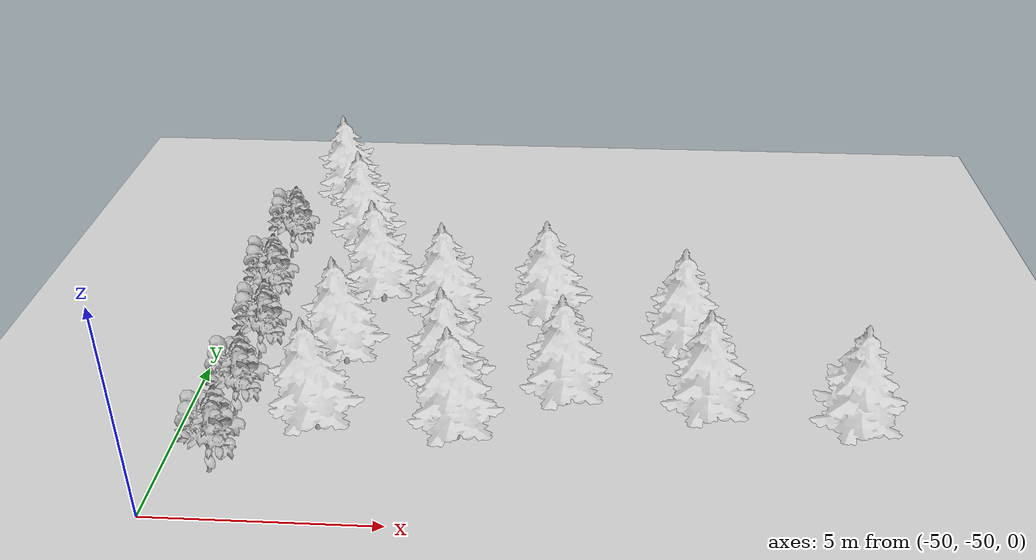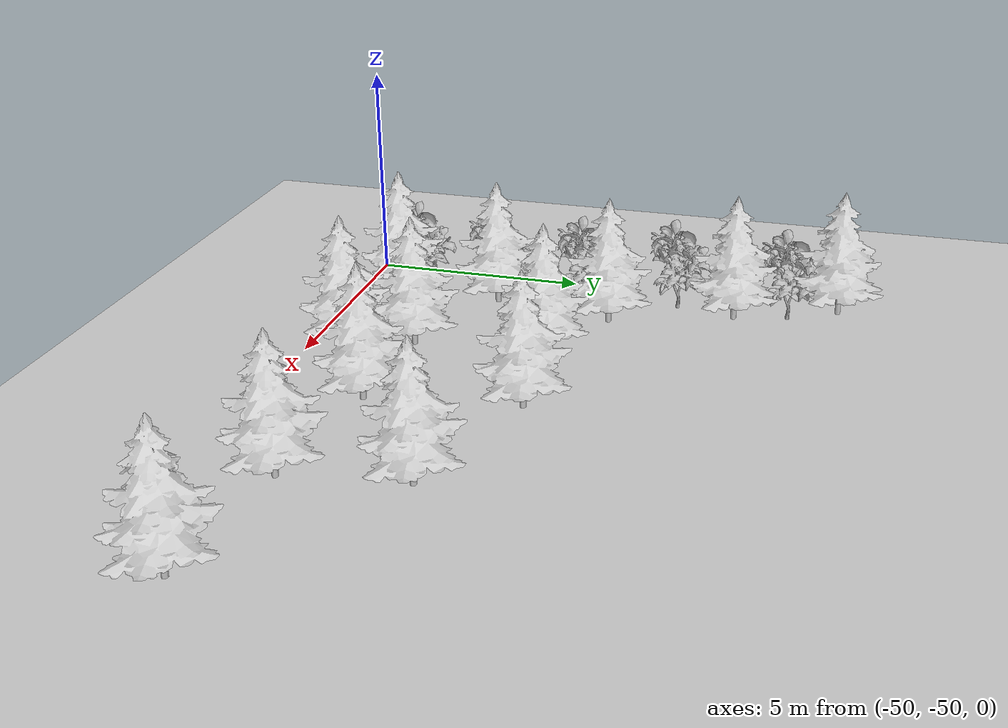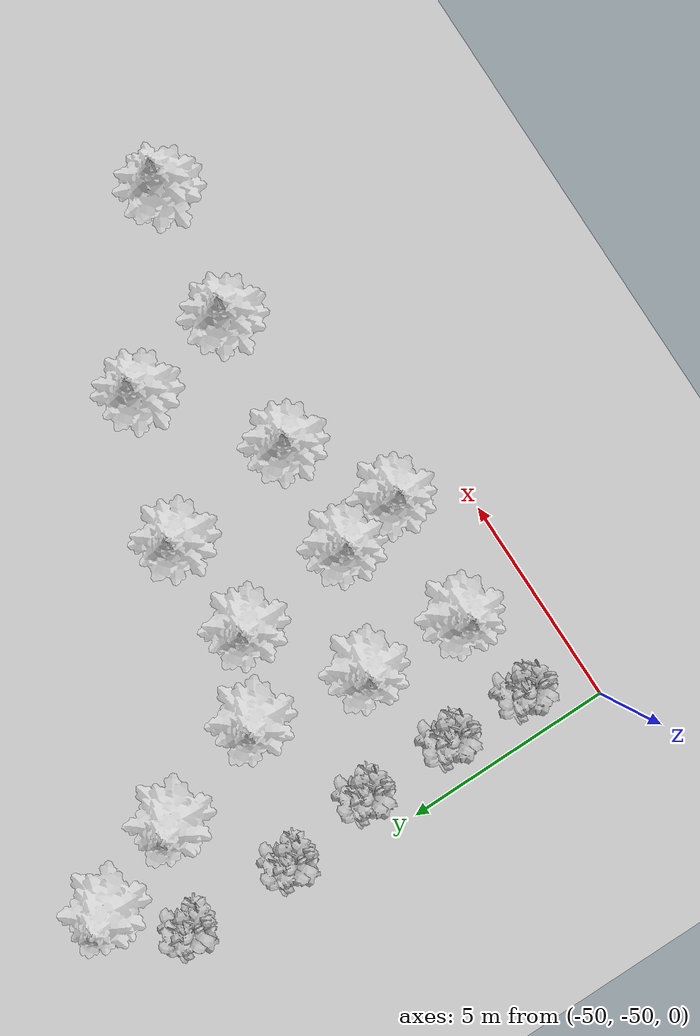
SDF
<sdf version="1.7">
 <world name="default">
  <light name="sun" type="directional">
   <pose>0 0 10 0 -0 0</pose>
   <diffuse>0.8 0.8 0.8 1</diffuse>
   <specular>0.2 0.2 0.2 1</specular>
   <attenuation>
    <range>1000</range>
    <constant>0.9</constant>
    <linear>0.01</linear>
    <quadratic>0.001</quadratic>
   </attenuation>
   <direction>-0.5 0.1 -0.9</direction>
   <spot><inner_angle>0</inner_angle><outer_angle>0</outer_angle><falloff>0</falloff></spot>
  </light>
  <model name="ground_plane">
   <static>1</static>
   <link name="link">
    <collision name="collision">
     <geometry><plane><normal>0 0 1</normal><size>100 100</size></plane></geometry>
     <surface>
      <contact><collide_bitmask>65535</collide_bitmask></contact>
      <friction><ode><mu>100</mu><mu2>50</mu2></ode></friction>
     </surface>
    </collision>
    <visual name="visual">
     <cast_shadows>0</cast_shadows>
     <geometry><plane><normal>0 0 1</normal><size>100 100</size></plane></geometry>
     <material>
      <script><uri>file://media/materials/scripts/gazebo.material</uri><name>Gazebo/Grey</name></script>
     </material>
    </visual>
   </link>
  </model>
  <gravity>0 0 -9.8</gravity>
  <magnetic_field>6e-06 2.3e-05 -4.2e-05</magnetic_field>
  <atmosphere type="adiabatic"/>
  <physics type="ode">
   <max_step_size>0.001</max_step_size>
   <real_time_factor>1</real_time_factor>
   <real_time_update_rate>1000</real_time_update_rate>
  </physics>
  <scene><ambient>0.4 0.4 0.4 1</ambient><background>0.7 0.7 0.7 1</background><shadows>1</shadows></scene>
  <spherical_coordinates>
   <surface_model>EARTH_WGS84</surface_model>
   <latitude_deg>0</latitude_deg>
   <longitude_deg>0</longitude_deg>
   <elevation>0</elevation>
   <heading_deg>0</heading_deg>
  </spherical_coordinates>
  <model name="pine_tree_1">
   <static>1</static>
   <link name="pine_tree_1">
    <pose>0 0 1 0 -0 0</pose>
    <collision name="pine_tree_1">
     <geometry><mesh><uri>model://pine_tree_1/pine_tree_1.dae</uri></mesh></geometry>
    </collision>
    <visual name="pine_tree_1">
     <cast_shadows>0</cast_shadows>
     <geometry><mesh><scale>0.9 0.9 0.9</scale><uri>model://pine_tree_1/pine_tree_1.dae</uri></mesh></geometry>
     <material><script><name>pine_tree_1</name><uri>model://pine_tree_1/pine_tree_1.dae</uri></script></material>
    </visual>
   </link>
   <pose>-47.6303 -38.541 0 0 -0 0</pose>
  </model>
  <model name="pine_tree_1_0">
   <static>1</static>
   <link name="pine_tree_1">
    <pose>0 0 1 0 -0 0</pose>
    <collision name="pine_tree_1">
     <geometry><mesh><uri>model://pine_tree_1/pine_tree_1.dae</uri></mesh></geometry>
    </collision>
    <visual name="pine_tree_1">
     <cast_shadows>0</cast_shadows>
     <geometry><mesh><scale>0.9 0.9 0.9</scale><uri>model://pine_tree_1/pine_tree_1.dae</uri></mesh></geometry>
     <material><script><name>pine_tree_1</name><uri>model://pine_tree_1/pine_tree_1.dae</uri></script></material>
    </visual>
   </link>
   <pose>-46.8308 -40.7186 0 0 -0 0</pose>
  </model>
  <model name="pine_tree_1_1">
   <static>1</static>
   <link name="pine_tree_1">
    <pose>0 0 1 0 -0 0</pose>
    <collision name="pine_tree_1">
     <geometry><mesh><uri>model://pine_tree_1/pine_tree_1.dae</uri></mesh></geometry>
    </collision>
    <visual name="pine_tree_1">
     <cast_shadows>0</cast_shadows>
     <geometry><mesh><scale>0.9 0.9 0.9</scale><uri>model://pine_tree_1/pine_tree_1.dae</uri></mesh></geometry>
     <material><script><name>pine_tree_1</name><uri>model://pine_tree_1/pine_tree_1.dae</uri></script></material>
    </visual>
   </link>
   <pose>-46.0277 -43.3141 0 0 -0 0</pose>
  </model>
  <model name="pine_tree_1_2">
   <static>1</static>
   <link name="pine_tree_1">
    <pose>0 0 1 0 -0 0</pose>
    <collision name="pine_tree_1">
     <geometry><mesh><uri>model://pine_tree_1/pine_tree_1.dae</uri></mesh></geometry>
    </collision>
    <visual name="pine_tree_1">
     <cast_shadows>0</cast_shadows>
     <geometry><mesh><scale>0.9 0.9 0.9</scale><uri>model://pine_tree_1/pine_tree_1.dae</uri></mesh></geometry>
     <material><script><name>pine_tree_1</name><uri>model://pine_tree_1/pine_tree_1.dae</uri></script></material>
    </visual>
   </link>
   <pose>-46.4459 -45.9111 0 0 -0 0</pose>
  </model>
  <model name="pine_tree_1_3">
   <static>1</static>
   <link name="pine_tree_1">
    <pose>0 0 1 0 -0 0</pose>
    <collision name="pine_tree_1">
     <geometry><mesh><uri>model://pine_tree_1/pine_tree_1.dae</uri></mesh></geometry>
    </collision>
    <visual name="pine_tree_1">
     <cast_shadows>0</cast_shadows>
     <geometry><mesh><scale>0.9 0.9 0.9</scale><uri>model://pine_tree_1/pine_tree_1.dae</uri></mesh></geometry>
     <material><script><name>pine_tree_1</name><uri>model://pine_tree_1/pine_tree_1.dae</uri></script></material>
    </visual>
   </link>
   <pose>-44.2925 -44.288 0 0 -0 0</pose>
  </model>
  <model name="pine_tree_1_4">
   <static>1</static>
   <link name="pine_tree_1">
    <pose>0 0 1 0 -0 0</pose>
    <collision name="pine_tree_1">
     <geometry><mesh><uri>model://pine_tree_1/pine_tree_1.dae</uri></mesh></geometry>
    </collision>
    <visual name="pine_tree_1">
     <cast_shadows>0</cast_shadows>
     <geometry><mesh><scale>0.9 0.9 0.9</scale><uri>model://pine_tree_1/pine_tree_1.dae</uri></mesh></geometry>
     <material><script><name>pine_tree_1</name><uri>model://pine_tree_1/pine_tree_1.dae</uri></script></material>
    </visual>
   </link>
   <pose>-43.9873 -46.983 0 0 -0 0</pose>
  </model>
  <model name="pine_tree_1_5">
   <static>1</static>
   <link name="pine_tree_1">
    <pose>0 0 1 0 -0 0</pose>
    <collision name="pine_tree_1">
     <geometry><mesh><uri>model://pine_tree_1/pine_tree_1.dae</uri></mesh></geometry>
    </collision>
    <visual name="pine_tree_1">
     <cast_shadows>0</cast_shadows>
     <geometry><mesh><scale>0.9 0.9 0.9</scale><uri>model://pine_tree_1/pine_tree_1.dae</uri></mesh></geometry>
     <material><script><name>pine_tree_1</name><uri>model://pine_tree_1/pine_tree_1.dae</uri></script></material>
    </visual>
   </link>
   <pose>-46.5955 -48.2274 0 0 -0 0</pose>
  </model>
  <model name="birch_tree">
   <static>1</static>
   <link name="birch_tree">
    <collision name="birch_tree">
     <geometry><mesh><uri>model://birch_tree/birch_tree.dae</uri></mesh></geometry>
    </collision>
    <visual name="birch_tree">
     <cast_shadows>0</cast_shadows>
     <geometry><mesh><scale>0.4 0.4 0.4</scale><uri>model://birch_tree/birch_tree.dae</uri></mesh></geometry>
     <material><script><name>birch_tree</name><uri>model://birch_tree/birch_tree.dae</uri></script></material>
    </visual>
   </link>
   <pose>-49.2438 -42.3078 0 0 -0 0</pose>
  </model>
  <model name="birch_tree_0">
   <static>1</static>
   <link name="birch_tree">
    <collision name="birch_tree">
     <geometry><mesh><uri>model://birch_tree/birch_tree.dae</uri></mesh></geometry>
    </collision>
    <visual name="birch_tree">
     <cast_shadows>0</cast_shadows>
     <geometry><mesh><scale>0.4 0.4 0.4</scale><uri>model://birch_tree/birch_tree.dae</uri></mesh></geometry>
     <material><script><name>birch_tree</name><uri>model://birch_tree/birch_tree.dae</uri></script></material>
    </visual>
   </link>
   <pose>-48.9254 -44.4658 0 0 -0 0</pose>
  </model>
  <model name="birch_tree_1">
   <static>1</static>
   <link name="birch_tree">
    <collision name="birch_tree">
     <geometry><mesh><uri>model://birch_tree/birch_tree.dae</uri></mesh></geometry>
    </collision>
    <visual name="birch_tree">
     <cast_shadows>0</cast_shadows>
     <geometry><mesh><scale>0.4 0.4 0.4</scale><uri>model://birch_tree/birch_tree.dae</uri></mesh></geometry>
     <material><script><name>birch_tree</name><uri>model://birch_tree/birch_tree.dae</uri></script></material>
    </visual>
   </link>
   <pose>-48.9175 -46.6421 0 0 -0 0</pose>
  </model>
  <model name="birch_tree_2">
   <static>1</static>
   <link name="birch_tree">
    <collision name="birch_tree">
     <geometry><mesh><uri>model://birch_tree/birch_tree.dae</uri></mesh></geometry>
    </collision>
    <visual name="birch_tree">
     <cast_shadows>0</cast_shadows>
     <geometry><mesh><scale>0.4 0.4 0.4</scale><uri>model://birch_tree/birch_tree.dae</uri></mesh></geometry>
     <material><script><name>birch_tree</name><uri>model://birch_tree/birch_tree.dae</uri></script></material>
    </visual>
   </link>
   <pose>-48.9451 -48.5629 0 0 -0 0</pose>
  </model>
  <model name="birch_tree_3">
   <static>1</static>
   <link name="birch_tree">
    <collision name="birch_tree">
     <geometry><mesh><uri>model://birch_tree/birch_tree.dae</uri></mesh></geometry>
    </collision>
    <visual name="birch_tree">
     <cast_shadows>0</cast_shadows>
     <geometry><mesh><scale>0.4 0.4 0.4</scale><uri>model://birch_tree/birch_tree.dae</uri></mesh></geometry>
     <material><script><name>birch_tree</name><uri>model://birch_tree/birch_tree.dae</uri></script></material>
    </visual>
   </link>
   <pose>-49.2586 -39.713 0 0 -0 0</pose>
  </model>
  <model name="pine_tree_1_6">
   <static>1</static>
   <link name="pine_tree_1">
    <pose>0 0 1 0 -0 0</pose>
    <collision name="pine_tree_1">
     <geometry><mesh><uri>model://pine_tree_1/pine_tree_1.dae</uri></mesh></geometry>
    </collision>
    <visual name="pine_tree_1">
     <cast_shadows>0</cast_shadows>
     <geometry><mesh><scale>0.9 0.9 0.9</scale><uri>model://pine_tree_1/pine_tree_1.dae</uri></mesh></geometry>
     <material><script><name>pine_tree_1</name><uri>model://pine_tree_1/pine_tree_1.dae</uri></script></material>
    </visual>
   </link>
   <pose>-41.5082 -47.1195 0 0 -0 0</pose>
  </model>
  <model name="pine_tree_1_7">
   <static>1</static>
   <link name="pine_tree_1">
    <pose>0 0 1 0 -0 0</pose>
    <collision name="pine_tree_1">
     <geometry><mesh><uri>model://pine_tree_1/pine_tree_1.dae</uri></mesh></geometry>
    </collision>
    <visual name="pine_tree_1">
     <cast_shadows>0</cast_shadows>
     <geometry><mesh><scale>0.9 0.9 0.9</scale><uri>model://pine_tree_1/pine_tree_1.dae</uri></mesh></geometry>
     <material><script><name>pine_tree_1</name><uri>model://pine_tree_1/pine_tree_1.dae</uri></script></material>
    </visual>
   </link>
   <pose>-38.5647 -47.5245 0 0 -0 0</pose>
  </model>
  <model name="pine_tree_1_8">
   <static>1</static>
   <link name="pine_tree_1">
    <pose>0 0 1 0 -0 0</pose>
    <collision name="pine_tree_1">
     <geometry><mesh><uri>model://pine_tree_1/pine_tree_1.dae</uri></mesh></geometry>
    </collision>
    <visual name="pine_tree_1">
     <cast_shadows>0</cast_shadows>
     <geometry><mesh><scale>0.9 0.9 0.9</scale><uri>model://pine_tree_1/pine_tree_1.dae</uri></mesh></geometry>
     <material><script><name>pine_tree_1</name><uri>model://pine_tree_1/pine_tree_1.dae</uri></script></material>
    </visual>
   </link>
   <pose>-41.945 -44.0697 0 0 -0 0</pose>
  </model>
  <model name="pine_tree_1_9">
   <static>1</static>
   <link name="pine_tree_1">
    <pose>0 0 1 0 -0 0</pose>
    <collision name="pine_tree_1">
     <geometry><mesh><uri>model://pine_tree_1/pine_tree_1.dae</uri></mesh></geometry>
    </collision>
    <visual name="pine_tree_1">
     <cast_shadows>0</cast_shadows>
     <geometry><mesh><scale>0.9 0.9 0.9</scale><uri>model://pine_tree_1/pine_tree_1.dae</uri></mesh></geometry>
     <material><script><name>pine_tree_1</name><uri>model://pine_tree_1/pine_tree_1.dae</uri></script></material>
    </visual>
   </link>
   <pose>-38.9076 -45.1394 0 0 -0 0</pose>
  </model>
  <model name="pine_tree_1_10">
   <static>1</static>
   <link name="pine_tree_1">
    <pose>0 0 1 0 -0 0</pose>
    <collision name="pine_tree_1">
     <geometry><mesh><uri>model://pine_tree_1/pine_tree_1.dae</uri></mesh></geometry>
    </collision>
    <visual name="pine_tree_1">
     <cast_shadows>0</cast_shadows>
     <geometry><mesh><scale>0.9 0.9 0.9</scale><uri>model://pine_tree_1/pine_tree_1.dae</uri></mesh></geometry>
     <material><script><name>pine_tree_1</name><uri>model://pine_tree_1/pine_tree_1.dae</uri></script></material>
    </visual>
   </link>
   <pose>-43.7 -48.3999 0 0 -0 0</pose>
  </model>
  <model name="pine_tree_1_11">
   <static>1</static>
   <link name="pine_tree_1">
    <pose>0 0 1 0 -0 0</pose>
    <collision name="pine_tree_1">
     <geometry><mesh><uri>model://pine_tree_1/pine_tree_1.dae</uri></mesh></geometry>
    </collision>
    <visual name="pine_tree_1">
     <cast_shadows>0</cast_shadows>
     <geometry><mesh><scale>0.9 0.9 0.9</scale><uri>model://pine_tree_1/pine_tree_1.dae</uri></mesh></geometry>
     <material><script><name>pine_tree_1</name><uri>model://pine_tree_1/pine_tree_1.dae</uri></script></material>
    </visual>
   </link>
   <pose>-35.5712 -47.8901 0 0 -0 0</pose>
  </model>
 </world>
</sdf>
